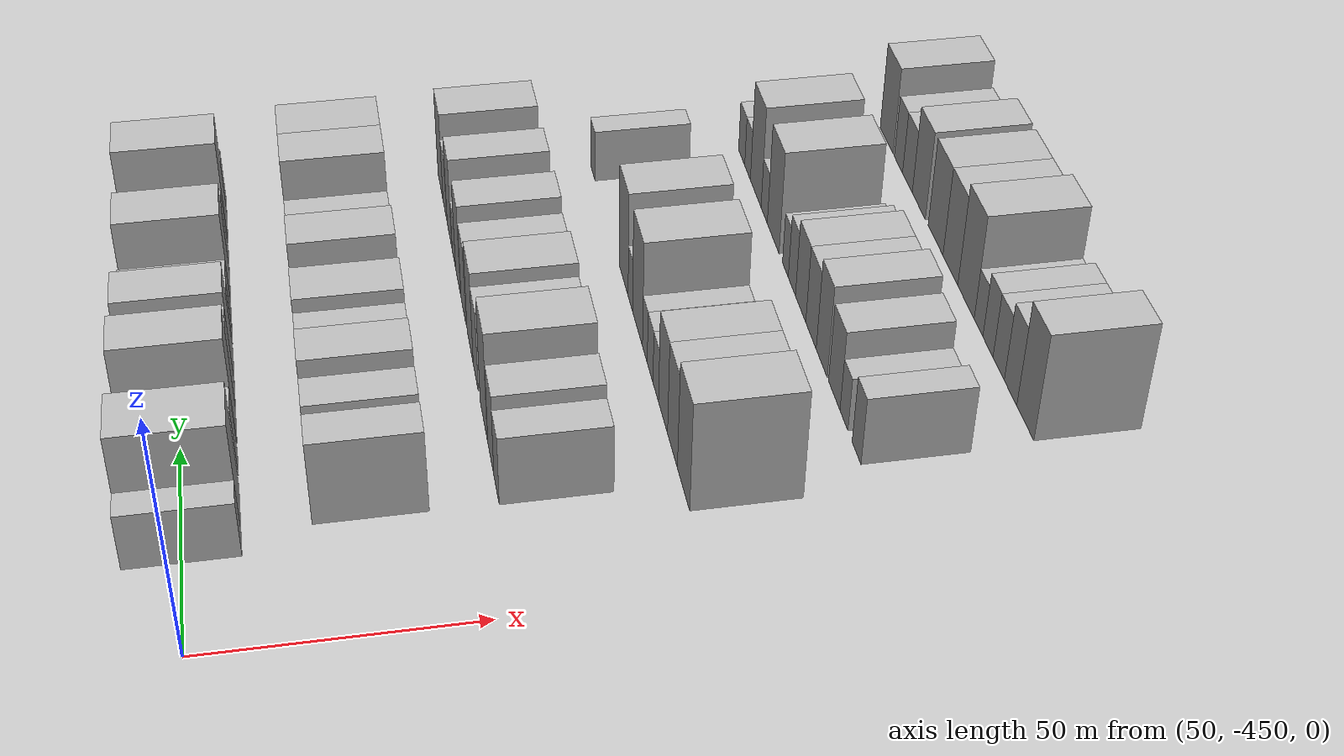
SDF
<sdf version="1.6">
 <world name="default">
  <model name="building_10">
   <static>1</static>
   <pose>50.0000 -425.8191 0 0.000000 0.000000 0.000000</pose>
   <link name="link">
    <pose>0 0 6.00 0 0 0</pose>
    <collision name="collision"><geometry><box><size>20.0000 5.7678 12.0000</size></box></geometry></collision>
    <visual name="visual">
     <cast_shadows>0</cast_shadows>
     <geometry><box><size>20.0000 5.7678 12.0000</size></box></geometry>
     <material>
      <script>
       <uri>model://HANNAS_wall/materials/scripts</uri>
       <uri>model://HANNAS_wall/materials/textures</uri>
       <name>vrc/HANNAS_wall</name>
      </script>
     </material>
    </visual>
   </link>
  </model>
  <model name="building_11">
   <static>1</static>
   <pose>50.0000 -417.2933 0 0.000000 0.000000 0.000000</pose>
   <link name="link">
    <pose>0 0 12.00 0 0 0</pose>
    <collision name="collision"><geometry><box><size>20.0000 11.2836 24.0000</size></box></geometry></collision>
    <visual name="visual">
     <cast_shadows>0</cast_shadows>
     <geometry><box><size>20.0000 11.2836 24.0000</size></box></geometry>
     <material>
      <script>
       <uri>model://HANNAS_wall/materials/scripts</uri>
       <uri>model://HANNAS_wall/materials/textures</uri>
       <name>vrc/HANNAS_wall</name>
      </script>
     </material>
    </visual>
   </link>
  </model>
  <model name="building_12">
   <static>1</static>
   <pose>50.0000 -405.4217 0 0.000000 0.000000 0.000000</pose>
   <link name="link">
    <pose>0 0 7.50 0 0 0</pose>
    <collision name="collision"><geometry><box><size>20.0000 6.4597 15.0000</size></box></geometry></collision>
    <visual name="visual">
     <cast_shadows>0</cast_shadows>
     <geometry><box><size>20.0000 6.4597 15.0000</size></box></geometry>
     <material>
      <script>
       <uri>model://HANNAS_wall/materials/scripts</uri>
       <uri>model://HANNAS_wall/materials/textures</uri>
       <name>vrc/HANNAS_wall</name>
      </script>
     </material>
    </visual>
   </link>
  </model>
  <model name="building_13">
   <static>1</static>
   <pose>50.0000 -395.3495 0 0.000000 0.000000 0.000000</pose>
   <link name="link">
    <pose>0 0 12.00 0 0 0</pose>
    <collision name="collision"><geometry><box><size>20.0000 9.6846 24.0000</size></box></geometry></collision>
    <visual name="visual">
     <cast_shadows>0</cast_shadows>
     <geometry><box><size>20.0000 9.6846 24.0000</size></box></geometry>
     <material>
      <script>
       <uri>model://HANNAS_wall/materials/scripts</uri>
       <uri>model://HANNAS_wall/materials/textures</uri>
       <name>vrc/HANNAS_wall</name>
      </script>
     </material>
    </visual>
   </link>
  </model>
  <model name="building_14">
   <static>1</static>
   <pose>50.0000 -386.7762 0 0.000000 0.000000 0.000000</pose>
   <link name="link">
    <pose>0 0 9.00 0 0 0</pose>
    <collision name="collision"><geometry><box><size>20.0000 7.4621 18.0000</size></box></geometry></collision>
    <visual name="visual">
     <cast_shadows>0</cast_shadows>
     <geometry><box><size>20.0000 7.4621 18.0000</size></box></geometry>
     <material>
      <script>
       <uri>model://HANNAS_wall/materials/scripts</uri>
       <uri>model://HANNAS_wall/materials/textures</uri>
       <name>vrc/HANNAS_wall</name>
      </script>
     </material>
    </visual>
   </link>
  </model>
  <model name="building_15">
   <static>1</static>
   <pose>50.0000 -378.3751 0 0.000000 0.000000 0.000000</pose>
   <link name="link">
    <pose>0 0 10.50 0 0 0</pose>
    <collision name="collision"><geometry><box><size>20.0000 9.3400 21.0000</size></box></geometry></collision>
    <visual name="visual">
     <cast_shadows>0</cast_shadows>
     <geometry><box><size>20.0000 9.3400 21.0000</size></box></geometry>
     <material>
      <script>
       <uri>model://HANNAS_wall/materials/scripts</uri>
       <uri>model://HANNAS_wall/materials/textures</uri>
       <name>vrc/HANNAS_wall</name>
      </script>
     </material>
    </visual>
   </link>
  </model>
  <model name="building_16">
   <static>1</static>
   <pose>50.0000 -369.2400 0 0.000000 0.000000 0.000000</pose>
   <link name="link">
    <pose>0 0 6.00 0 0 0</pose>
    <collision name="collision"><geometry><box><size>20.0000 4.9302 12.0000</size></box></geometry></collision>
    <visual name="visual">
     <cast_shadows>0</cast_shadows>
     <geometry><box><size>20.0000 4.9302 12.0000</size></box></geometry>
     <material>
      <script>
       <uri>model://HANNAS_wall/materials/scripts</uri>
       <uri>model://HANNAS_wall/materials/textures</uri>
       <name>vrc/HANNAS_wall</name>
      </script>
     </material>
    </visual>
   </link>
  </model>
  <model name="building_17">
   <static>1</static>
   <pose>50.0000 -363.8167 0 0.000000 0.000000 0.000000</pose>
   <link name="link">
    <pose>0 0 6.00 0 0 0</pose>
    <collision name="collision"><geometry><box><size>20.0000 5.9164 12.0000</size></box></geometry></collision>
    <visual name="visual">
     <cast_shadows>0</cast_shadows>
     <geometry><box><size>20.0000 5.9164 12.0000</size></box></geometry>
     <material>
      <script>
       <uri>model://HANNAS_wall/materials/scripts</uri>
       <uri>model://HANNAS_wall/materials/textures</uri>
       <name>vrc/HANNAS_wall</name>
      </script>
     </material>
    </visual>
   </link>
  </model>
  <model name="building_18">
   <static>1</static>
   <pose>50.0000 -353.6377 0 0.000000 0.000000 0.000000</pose>
   <link name="link">
    <pose>0 0 10.50 0 0 0</pose>
    <collision name="collision"><geometry><box><size>20.0000 10.4416 21.0000</size></box></geometry></collision>
    <visual name="visual">
     <cast_shadows>0</cast_shadows>
     <geometry><box><size>20.0000 10.4416 21.0000</size></box></geometry>
     <material>
      <script>
       <uri>model://HANNAS_wall/materials/scripts</uri>
       <uri>model://HANNAS_wall/materials/textures</uri>
       <name>vrc/HANNAS_wall</name>
      </script>
     </material>
    </visual>
   </link>
  </model>
  <model name="building_19">
   <static>1</static>
   <pose>50.0000 -345.2681 0 0.000000 0.000000 0.000000</pose>
   <link name="link">
    <pose>0 0 7.50 0 0 0</pose>
    <collision name="collision"><geometry><box><size>20.0000 6.2976 15.0000</size></box></geometry></collision>
    <visual name="visual">
     <cast_shadows>0</cast_shadows>
     <geometry><box><size>20.0000 6.2976 15.0000</size></box></geometry>
     <material>
      <script>
       <uri>model://HANNAS_wall/materials/scripts</uri>
       <uri>model://HANNAS_wall/materials/textures</uri>
       <name>vrc/HANNAS_wall</name>
      </script>
     </material>
    </visual>
   </link>
  </model>
  <model name="building_20">
   <static>1</static>
   <pose>50.0000 -333.7515 0 0.000000 0.000000 0.000000</pose>
   <link name="link">
    <pose>0 0 12.00 0 0 0</pose>
    <collision name="collision"><geometry><box><size>20.0000 10.7356 24.0000</size></box></geometry></collision>
    <visual name="visual">
     <cast_shadows>0</cast_shadows>
     <geometry><box><size>20.0000 10.7356 24.0000</size></box></geometry>
     <material>
      <script>
       <uri>model://HANNAS_wall/materials/scripts</uri>
       <uri>model://HANNAS_wall/materials/textures</uri>
       <name>vrc/HANNAS_wall</name>
      </script>
     </material>
    </visual>
   </link>
  </model>
  <model name="building_21">
   <static>1</static>
   <pose>50.0000 -325.8226 0 0.000000 0.000000 0.000000</pose>
   <link name="link">
    <pose>0 0 6.00 0 0 0</pose>
    <collision name="collision"><geometry><box><size>20.0000 5.1222 12.0000</size></box></geometry></collision>
    <visual name="visual">
     <cast_shadows>0</cast_shadows>
     <geometry><box><size>20.0000 5.1222 12.0000</size></box></geometry>
     <material>
      <script>
       <uri>model://HANNAS_wall/materials/scripts</uri>
       <uri>model://HANNAS_wall/materials/textures</uri>
       <name>vrc/HANNAS_wall</name>
      </script>
     </material>
    </visual>
   </link>
  </model>
  <model name="building_131">
   <static>1</static>
   <pose>82.0000 -419.0518 0 0.000000 0.000000 0.000000</pose>
   <link name="link">
    <pose>0 0 9.00 0 0 0</pose>
    <collision name="collision"><geometry><box><size>20.0000 7.8377 18.0000</size></box></geometry></collision>
    <visual name="visual">
     <cast_shadows>0</cast_shadows>
     <geometry><box><size>20.0000 7.8377 18.0000</size></box></geometry>
     <material>
      <script>
       <uri>model://HANNAS_wall/materials/scripts</uri>
       <uri>model://HANNAS_wall/materials/textures</uri>
       <name>vrc/HANNAS_wall</name>
      </script>
     </material>
    </visual>
   </link>
  </model>
  <model name="building_132">
   <static>1</static>
   <pose>82.0000 -409.3513 0 0.000000 0.000000 0.000000</pose>
   <link name="link">
    <pose>0 0 9.00 0 0 0</pose>
    <collision name="collision"><geometry><box><size>20.0000 7.5633 18.0000</size></box></geometry></collision>
    <visual name="visual">
     <cast_shadows>0</cast_shadows>
     <geometry><box><size>20.0000 7.5633 18.0000</size></box></geometry>
     <material>
      <script>
       <uri>model://HANNAS_wall/materials/scripts</uri>
       <uri>model://HANNAS_wall/materials/textures</uri>
       <name>vrc/HANNAS_wall</name>
      </script>
     </material>
    </visual>
   </link>
  </model>
  <model name="building_133">
   <static>1</static>
   <pose>82.0000 -400.1286 0 0.000000 0.000000 0.000000</pose>
   <link name="link">
    <pose>0 0 10.50 0 0 0</pose>
    <collision name="collision"><geometry><box><size>20.0000 8.8820 21.0000</size></box></geometry></collision>
    <visual name="visual">
     <cast_shadows>0</cast_shadows>
     <geometry><box><size>20.0000 8.8820 21.0000</size></box></geometry>
     <material>
      <script>
       <uri>model://HANNAS_wall/materials/scripts</uri>
       <uri>model://HANNAS_wall/materials/textures</uri>
       <name>vrc/HANNAS_wall</name>
      </script>
     </material>
    </visual>
   </link>
  </model>
  <model name="building_134">
   <static>1</static>
   <pose>82.0000 -391.4802 0 0.000000 0.000000 0.000000</pose>
   <link name="link">
    <pose>0 0 9.00 0 0 0</pose>
    <collision name="collision"><geometry><box><size>20.0000 8.4148 18.0000</size></box></geometry></collision>
    <visual name="visual">
     <cast_shadows>0</cast_shadows>
     <geometry><box><size>20.0000 8.4148 18.0000</size></box></geometry>
     <material>
      <script>
       <uri>model://HANNAS_wall/materials/scripts</uri>
       <uri>model://HANNAS_wall/materials/textures</uri>
       <name>vrc/HANNAS_wall</name>
      </script>
     </material>
    </visual>
   </link>
  </model>
  <model name="building_135">
   <static>1</static>
   <pose>82.0000 -382.4809 0 0.000000 0.000000 0.000000</pose>
   <link name="link">
    <pose>0 0 10.50 0 0 0</pose>
    <collision name="collision"><geometry><box><size>20.0000 9.5838 21.0000</size></box></geometry></collision>
    <visual name="visual">
     <cast_shadows>0</cast_shadows>
     <geometry><box><size>20.0000 9.5838 21.0000</size></box></geometry>
     <material>
      <script>
       <uri>model://HANNAS_wall/materials/scripts</uri>
       <uri>model://HANNAS_wall/materials/textures</uri>
       <name>vrc/HANNAS_wall</name>
      </script>
     </material>
    </visual>
   </link>
  </model>
  <model name="building_136">
   <static>1</static>
   <pose>82.0000 -374.0502 0 0.000000 0.000000 0.000000</pose>
   <link name="link">
    <pose>0 0 7.50 0 0 0</pose>
    <collision name="collision"><geometry><box><size>20.0000 7.2776 15.0000</size></box></geometry></collision>
    <visual name="visual">
     <cast_shadows>0</cast_shadows>
     <geometry><box><size>20.0000 7.2776 15.0000</size></box></geometry>
     <material>
      <script>
       <uri>model://HANNAS_wall/materials/scripts</uri>
       <uri>model://HANNAS_wall/materials/textures</uri>
       <name>vrc/HANNAS_wall</name>
      </script>
     </material>
    </visual>
   </link>
  </model>
  <model name="building_137">
   <static>1</static>
   <pose>82.0000 -365.7392 0 0.000000 0.000000 0.000000</pose>
   <link name="link">
    <pose>0 0 10.50 0 0 0</pose>
    <collision name="collision"><geometry><box><size>20.0000 9.3444 21.0000</size></box></geometry></collision>
    <visual name="visual">
     <cast_shadows>0</cast_shadows>
     <geometry><box><size>20.0000 9.3444 21.0000</size></box></geometry>
     <material>
      <script>
       <uri>model://HANNAS_wall/materials/scripts</uri>
       <uri>model://HANNAS_wall/materials/textures</uri>
       <name>vrc/HANNAS_wall</name>
      </script>
     </material>
    </visual>
   </link>
  </model>
  <model name="building_138">
   <static>1</static>
   <pose>82.0000 -356.8551 0 0.000000 0.000000 0.000000</pose>
   <link name="link">
    <pose>0 0 7.50 0 0 0</pose>
    <collision name="collision"><geometry><box><size>20.0000 6.4238 15.0000</size></box></geometry></collision>
    <visual name="visual">
     <cast_shadows>0</cast_shadows>
     <geometry><box><size>20.0000 6.4238 15.0000</size></box></geometry>
     <material>
      <script>
       <uri>model://HANNAS_wall/materials/scripts</uri>
       <uri>model://HANNAS_wall/materials/textures</uri>
       <name>vrc/HANNAS_wall</name>
      </script>
     </material>
    </visual>
   </link>
  </model>
  <model name="building_139">
   <static>1</static>
   <pose>82.0000 -350.5887 0 0.000000 0.000000 0.000000</pose>
   <link name="link">
    <pose>0 0 7.50 0 0 0</pose>
    <collision name="collision"><geometry><box><size>20.0000 6.1089 15.0000</size></box></geometry></collision>
    <visual name="visual">
     <cast_shadows>0</cast_shadows>
     <geometry><box><size>20.0000 6.1089 15.0000</size></box></geometry>
     <material>
      <script>
       <uri>model://HANNAS_wall/materials/scripts</uri>
       <uri>model://HANNAS_wall/materials/textures</uri>
       <name>vrc/HANNAS_wall</name>
      </script>
     </material>
    </visual>
   </link>
  </model>
  <model name="building_140">
   <static>1</static>
   <pose>82.0000 -342.6382 0 0.000000 0.000000 0.000000</pose>
   <link name="link">
    <pose>0 0 12.00 0 0 0</pose>
    <collision name="collision"><geometry><box><size>20.0000 9.7922 24.0000</size></box></geometry></collision>
    <visual name="visual">
     <cast_shadows>0</cast_shadows>
     <geometry><box><size>20.0000 9.7922 24.0000</size></box></geometry>
     <material>
      <script>
       <uri>model://HANNAS_wall/materials/scripts</uri>
       <uri>model://HANNAS_wall/materials/textures</uri>
       <name>vrc/HANNAS_wall</name>
      </script>
     </material>
    </visual>
   </link>
  </model>
  <model name="building_141">
   <static>1</static>
   <pose>82.0000 -332.4891 0 0.000000 0.000000 0.000000</pose>
   <link name="link">
    <pose>0 0 12.00 0 0 0</pose>
    <collision name="collision"><geometry><box><size>20.0000 10.5059 24.0000</size></box></geometry></collision>
    <visual name="visual">
     <cast_shadows>0</cast_shadows>
     <geometry><box><size>20.0000 10.5059 24.0000</size></box></geometry>
     <material>
      <script>
       <uri>model://HANNAS_wall/materials/scripts</uri>
       <uri>model://HANNAS_wall/materials/textures</uri>
       <name>vrc/HANNAS_wall</name>
      </script>
     </material>
    </visual>
   </link>
  </model>
  <model name="building_248">
   <static>1</static>
   <pose>114.0000 -419.5696 0 0.000000 0.000000 0.000000</pose>
   <link name="link">
    <pose>0 0 7.50 0 0 0</pose>
    <collision name="collision"><geometry><box><size>20.0000 7.4821 15.0000</size></box></geometry></collision>
    <visual name="visual">
     <cast_shadows>0</cast_shadows>
     <geometry><box><size>20.0000 7.4821 15.0000</size></box></geometry>
     <material>
      <script>
       <uri>model://HANNAS_wall/materials/scripts</uri>
       <uri>model://HANNAS_wall/materials/textures</uri>
       <name>vrc/HANNAS_wall</name>
      </script>
     </material>
    </visual>
   </link>
  </model>
  <model name="building_249">
   <static>1</static>
   <pose>114.0000 -411.5378 0 0.000000 0.000000 0.000000</pose>
   <link name="link">
    <pose>0 0 9.00 0 0 0</pose>
    <collision name="collision"><geometry><box><size>20.0000 8.5815 18.0000</size></box></geometry></collision>
    <visual name="visual">
     <cast_shadows>0</cast_shadows>
     <geometry><box><size>20.0000 8.5815 18.0000</size></box></geometry>
     <material>
      <script>
       <uri>model://HANNAS_wall/materials/scripts</uri>
       <uri>model://HANNAS_wall/materials/textures</uri>
       <name>vrc/HANNAS_wall</name>
      </script>
     </material>
    </visual>
   </link>
  </model>
  <model name="building_250">
   <static>1</static>
   <pose>114.0000 -400.9803 0 0.000000 0.000000 0.000000</pose>
   <link name="link">
    <pose>0 0 12.00 0 0 0</pose>
    <collision name="collision"><geometry><box><size>20.0000 10.5334 24.0000</size></box></geometry></collision>
    <visual name="visual">
     <cast_shadows>0</cast_shadows>
     <geometry><box><size>20.0000 10.5334 24.0000</size></box></geometry>
     <material>
      <script>
       <uri>model://HANNAS_wall/materials/scripts</uri>
       <uri>model://HANNAS_wall/materials/textures</uri>
       <name>vrc/HANNAS_wall</name>
      </script>
     </material>
    </visual>
   </link>
  </model>
  <model name="building_251">
   <static>1</static>
   <pose>114.0000 -388.7476 0 0.000000 0.000000 0.000000</pose>
   <link name="link">
    <pose>0 0 9.00 0 0 0</pose>
    <collision name="collision"><geometry><box><size>20.0000 7.9319 18.0000</size></box></geometry></collision>
    <visual name="visual">
     <cast_shadows>0</cast_shadows>
     <geometry><box><size>20.0000 7.9319 18.0000</size></box></geometry>
     <material>
      <script>
       <uri>model://HANNAS_wall/materials/scripts</uri>
       <uri>model://HANNAS_wall/materials/textures</uri>
       <name>vrc/HANNAS_wall</name>
      </script>
     </material>
    </visual>
   </link>
  </model>
  <model name="building_252">
   <static>1</static>
   <pose>114.0000 -379.7760 0 0.000000 0.000000 0.000000</pose>
   <link name="link">
    <pose>0 0 10.50 0 0 0</pose>
    <collision name="collision"><geometry><box><size>20.0000 10.0113 21.0000</size></box></geometry></collision>
    <visual name="visual">
     <cast_shadows>0</cast_shadows>
     <geometry><box><size>20.0000 10.0113 21.0000</size></box></geometry>
     <material>
      <script>
       <uri>model://HANNAS_wall/materials/scripts</uri>
       <uri>model://HANNAS_wall/materials/textures</uri>
       <name>vrc/HANNAS_wall</name>
      </script>
     </material>
    </visual>
   </link>
  </model>
  <model name="building_253">
   <static>1</static>
   <pose>114.0000 -368.7015 0 0.000000 0.000000 0.000000</pose>
   <link name="link">
    <pose>0 0 9.00 0 0 0</pose>
    <collision name="collision"><geometry><box><size>20.0000 8.1379 18.0000</size></box></geometry></collision>
    <visual name="visual">
     <cast_shadows>0</cast_shadows>
     <geometry><box><size>20.0000 8.1379 18.0000</size></box></geometry>
     <material>
      <script>
       <uri>model://HANNAS_wall/materials/scripts</uri>
       <uri>model://HANNAS_wall/materials/textures</uri>
       <name>vrc/HANNAS_wall</name>
      </script>
     </material>
    </visual>
   </link>
  </model>
  <model name="building_254">
   <static>1</static>
   <pose>114.0000 -359.2315 0 0.000000 0.000000 0.000000</pose>
   <link name="link">
    <pose>0 0 10.50 0 0 0</pose>
    <collision name="collision"><geometry><box><size>20.0000 8.8020 21.0000</size></box></geometry></collision>
    <visual name="visual">
     <cast_shadows>0</cast_shadows>
     <geometry><box><size>20.0000 8.8020 21.0000</size></box></geometry>
     <material>
      <script>
       <uri>model://HANNAS_wall/materials/scripts</uri>
       <uri>model://HANNAS_wall/materials/textures</uri>
       <name>vrc/HANNAS_wall</name>
      </script>
     </material>
    </visual>
   </link>
  </model>
  <model name="building_255">
   <static>1</static>
   <pose>114.0000 -351.8576 0 0.000000 0.000000 0.000000</pose>
   <link name="link">
    <pose>0 0 6.00 0 0 0</pose>
    <collision name="collision"><geometry><box><size>20.0000 5.9457 12.0000</size></box></geometry></collision>
    <visual name="visual">
     <cast_shadows>0</cast_shadows>
     <geometry><box><size>20.0000 5.9457 12.0000</size></box></geometry>
     <material>
      <script>
       <uri>model://HANNAS_wall/materials/scripts</uri>
       <uri>model://HANNAS_wall/materials/textures</uri>
       <name>vrc/HANNAS_wall</name>
      </script>
     </material>
    </visual>
   </link>
  </model>
  <model name="building_256">
   <static>1</static>
   <pose>114.0000 -343.6477 0 0.000000 0.000000 0.000000</pose>
   <link name="link">
    <pose>0 0 10.50 0 0 0</pose>
    <collision name="collision"><geometry><box><size>20.0000 8.4742 21.0000</size></box></geometry></collision>
    <visual name="visual">
     <cast_shadows>0</cast_shadows>
     <geometry><box><size>20.0000 8.4742 21.0000</size></box></geometry>
     <material>
      <script>
       <uri>model://HANNAS_wall/materials/scripts</uri>
       <uri>model://HANNAS_wall/materials/textures</uri>
       <name>vrc/HANNAS_wall</name>
      </script>
     </material>
    </visual>
   </link>
  </model>
  <model name="building_257">
   <static>1</static>
   <pose>114.0000 -334.9145 0 0.000000 0.000000 0.000000</pose>
   <link name="link">
    <pose>0 0 7.50 0 0 0</pose>
    <collision name="collision"><geometry><box><size>20.0000 6.9921 15.0000</size></box></geometry></collision>
    <visual name="visual">
     <cast_shadows>0</cast_shadows>
     <geometry><box><size>20.0000 6.9921 15.0000</size></box></geometry>
     <material>
      <script>
       <uri>model://HANNAS_wall/materials/scripts</uri>
       <uri>model://HANNAS_wall/materials/textures</uri>
       <name>vrc/HANNAS_wall</name>
      </script>
     </material>
    </visual>
   </link>
  </model>
  <model name="building_258">
   <static>1</static>
   <pose>114.0000 -326.4656 0 0.000000 0.000000 0.000000</pose>
   <link name="link">
    <pose>0 0 10.50 0 0 0</pose>
    <collision name="collision"><geometry><box><size>20.0000 9.9057 21.0000</size></box></geometry></collision>
    <visual name="visual">
     <cast_shadows>0</cast_shadows>
     <geometry><box><size>20.0000 9.9057 21.0000</size></box></geometry>
     <material>
      <script>
       <uri>model://HANNAS_wall/materials/scripts</uri>
       <uri>model://HANNAS_wall/materials/textures</uri>
       <name>vrc/HANNAS_wall</name>
      </script>
     </material>
    </visual>
   </link>
  </model>
  <model name="building_366">
   <static>1</static>
   <pose>146.0000 -424.6190 0 0.000000 0.000000 0.000000</pose>
   <link name="link">
    <pose>0 0 12.00 0 0 0</pose>
    <collision name="collision"><geometry><box><size>20.0000 11.0587 24.0000</size></box></geometry></collision>
    <visual name="visual">
     <cast_shadows>0</cast_shadows>
     <geometry><box><size>20.0000 11.0587 24.0000</size></box></geometry>
     <material>
      <script>
       <uri>model://HANNAS_wall/materials/scripts</uri>
       <uri>model://HANNAS_wall/materials/textures</uri>
       <name>vrc/HANNAS_wall</name>
      </script>
     </material>
    </visual>
   </link>
  </model>
  <model name="building_367">
   <static>1</static>
   <pose>146.0000 -414.4801 0 0.000000 0.000000 0.000000</pose>
   <link name="link">
    <pose>0 0 10.50 0 0 0</pose>
    <collision name="collision"><geometry><box><size>20.0000 9.2193 21.0000</size></box></geometry></collision>
    <visual name="visual">
     <cast_shadows>0</cast_shadows>
     <geometry><box><size>20.0000 9.2193 21.0000</size></box></geometry>
     <material>
      <script>
       <uri>model://HANNAS_wall/materials/scripts</uri>
       <uri>model://HANNAS_wall/materials/textures</uri>
       <name>vrc/HANNAS_wall</name>
      </script>
     </material>
    </visual>
   </link>
  </model>
  <model name="building_368">
   <static>1</static>
   <pose>146.0000 -405.4758 0 0.000000 0.000000 0.000000</pose>
   <link name="link">
    <pose>0 0 10.50 0 0 0</pose>
    <collision name="collision"><geometry><box><size>20.0000 8.7893 21.0000</size></box></geometry></collision>
    <visual name="visual">
     <cast_shadows>0</cast_shadows>
     <geometry><box><size>20.0000 8.7893 21.0000</size></box></geometry>
     <material>
      <script>
       <uri>model://HANNAS_wall/materials/scripts</uri>
       <uri>model://HANNAS_wall/materials/textures</uri>
       <name>vrc/HANNAS_wall</name>
      </script>
     </material>
    </visual>
   </link>
  </model>
  <model name="building_369">
   <static>1</static>
   <pose>146.0000 -398.3038 0 0.000000 0.000000 0.000000</pose>
   <link name="link">
    <pose>0 0 6.00 0 0 0</pose>
    <collision name="collision"><geometry><box><size>20.0000 5.5546 12.0000</size></box></geometry></collision>
    <visual name="visual">
     <cast_shadows>0</cast_shadows>
     <geometry><box><size>20.0000 5.5546 12.0000</size></box></geometry>
     <material>
      <script>
       <uri>model://HANNAS_wall/materials/scripts</uri>
       <uri>model://HANNAS_wall/materials/textures</uri>
       <name>vrc/HANNAS_wall</name>
      </script>
     </material>
    </visual>
   </link>
  </model>
  <model name="building_370">
   <static>1</static>
   <pose>146.0000 -392.6201 0 0.000000 0.000000 0.000000</pose>
   <link name="link">
    <pose>0 0 6.00 0 0 0</pose>
    <collision name="collision"><geometry><box><size>20.0000 5.8129 12.0000</size></box></geometry></collision>
    <visual name="visual">
     <cast_shadows>0</cast_shadows>
     <geometry><box><size>20.0000 5.8129 12.0000</size></box></geometry>
     <material>
      <script>
       <uri>model://HANNAS_wall/materials/scripts</uri>
       <uri>model://HANNAS_wall/materials/textures</uri>
       <name>vrc/HANNAS_wall</name>
      </script>
     </material>
    </visual>
   </link>
  </model>
  <model name="building_371">
   <static>1</static>
   <pose>146.0000 -387.2226 0 0.000000 0.000000 0.000000</pose>
   <link name="link">
    <pose>0 0 6.00 0 0 0</pose>
    <collision name="collision"><geometry><box><size>20.0000 4.9822 12.0000</size></box></geometry></collision>
    <visual name="visual">
     <cast_shadows>0</cast_shadows>
     <geometry><box><size>20.0000 4.9822 12.0000</size></box></geometry>
     <material>
      <script>
       <uri>model://HANNAS_wall/materials/scripts</uri>
       <uri>model://HANNAS_wall/materials/textures</uri>
       <name>vrc/HANNAS_wall</name>
      </script>
     </material>
    </visual>
   </link>
  </model>
  <model name="building_372">
   <static>1</static>
   <pose>146.0000 -379.3462 0 0.000000 0.000000 0.000000</pose>
   <link name="link">
    <pose>0 0 12.00 0 0 0</pose>
    <collision name="collision"><geometry><box><size>20.0000 10.7706 24.0000</size></box></geometry></collision>
    <visual name="visual">
     <cast_shadows>0</cast_shadows>
     <geometry><box><size>20.0000 10.7706 24.0000</size></box></geometry>
     <material>
      <script>
       <uri>model://HANNAS_wall/materials/scripts</uri>
       <uri>model://HANNAS_wall/materials/textures</uri>
       <name>vrc/HANNAS_wall</name>
      </script>
     </material>
    </visual>
   </link>
  </model>
  <model name="building_373">
   <static>1</static>
   <pose>146.0000 -371.5034 0 0.000000 0.000000 0.000000</pose>
   <link name="link">
    <pose>0 0 6.00 0 0 0</pose>
    <collision name="collision"><geometry><box><size>20.0000 4.9151 12.0000</size></box></geometry></collision>
    <visual name="visual">
     <cast_shadows>0</cast_shadows>
     <geometry><box><size>20.0000 4.9151 12.0000</size></box></geometry>
     <material>
      <script>
       <uri>model://HANNAS_wall/materials/scripts</uri>
       <uri>model://HANNAS_wall/materials/textures</uri>
       <name>vrc/HANNAS_wall</name>
      </script>
     </material>
    </visual>
   </link>
  </model>
  <model name="building_374">
   <static>1</static>
   <pose>146.0000 -363.9908 0 0.000000 0.000000 0.000000</pose>
   <link name="link">
    <pose>0 0 12.00 0 0 0</pose>
    <collision name="collision"><geometry><box><size>20.0000 10.1101 24.0000</size></box></geometry></collision>
    <visual name="visual">
     <cast_shadows>0</cast_shadows>
     <geometry><box><size>20.0000 10.1101 24.0000</size></box></geometry>
     <material>
      <script>
       <uri>model://HANNAS_wall/materials/scripts</uri>
       <uri>model://HANNAS_wall/materials/textures</uri>
       <name>vrc/HANNAS_wall</name>
      </script>
     </material>
    </visual>
   </link>
  </model>
  <model name="building_375">
   <static>1</static>
   <pose>146.0000 -326.3778 0 0.000000 0.000000 0.000000</pose>
   <link name="link">
    <pose>0 0 6.00 0 0 0</pose>
    <collision name="collision"><geometry><box><size>20.0000 5.7053 12.0000</size></box></geometry></collision>
    <visual name="visual">
     <cast_shadows>0</cast_shadows>
     <geometry><box><size>20.0000 5.7053 12.0000</size></box></geometry>
     <material>
      <script>
       <uri>model://HANNAS_wall/materials/scripts</uri>
       <uri>model://HANNAS_wall/materials/textures</uri>
       <name>vrc/HANNAS_wall</name>
      </script>
     </material>
    </visual>
   </link>
  </model>
  <model name="building_476">
   <static>1</static>
   <pose>178.0000 -420.4299 0 0.000000 0.000000 0.000000</pose>
   <link name="link">
    <pose>0 0 7.50 0 0 0</pose>
    <collision name="collision"><geometry><box><size>20.0000 6.0752 15.0000</size></box></geometry></collision>
    <visual name="visual">
     <cast_shadows>0</cast_shadows>
     <geometry><box><size>20.0000 6.0752 15.0000</size></box></geometry>
     <material>
      <script>
       <uri>model://HANNAS_wall/materials/scripts</uri>
       <uri>model://HANNAS_wall/materials/textures</uri>
       <name>vrc/HANNAS_wall</name>
      </script>
     </material>
    </visual>
   </link>
  </model>
  <model name="building_477">
   <static>1</static>
   <pose>178.0000 -411.5671 0 0.000000 0.000000 0.000000</pose>
   <link name="link">
    <pose>0 0 6.00 0 0 0</pose>
    <collision name="collision"><geometry><box><size>20.0000 5.6503 12.0000</size></box></geometry></collision>
    <visual name="visual">
     <cast_shadows>0</cast_shadows>
     <geometry><box><size>20.0000 5.6503 12.0000</size></box></geometry>
     <material>
      <script>
       <uri>model://HANNAS_wall/materials/scripts</uri>
       <uri>model://HANNAS_wall/materials/textures</uri>
       <name>vrc/HANNAS_wall</name>
      </script>
     </material>
    </visual>
   </link>
  </model>
  <model name="building_478">
   <static>1</static>
   <pose>178.0000 -404.5381 0 0.000000 0.000000 0.000000</pose>
   <link name="link">
    <pose>0 0 9.00 0 0 0</pose>
    <collision name="collision"><geometry><box><size>20.0000 8.4079 18.0000</size></box></geometry></collision>
    <visual name="visual">
     <cast_shadows>0</cast_shadows>
     <geometry><box><size>20.0000 8.4079 18.0000</size></box></geometry>
     <material>
      <script>
       <uri>model://HANNAS_wall/materials/scripts</uri>
       <uri>model://HANNAS_wall/materials/textures</uri>
       <name>vrc/HANNAS_wall</name>
      </script>
     </material>
    </visual>
   </link>
  </model>
  <model name="building_479">
   <static>1</static>
   <pose>178.0000 -395.1265 0 0.000000 0.000000 0.000000</pose>
   <link name="link">
    <pose>0 0 10.50 0 0 0</pose>
    <collision name="collision"><geometry><box><size>20.0000 8.4152 21.0000</size></box></geometry></collision>
    <visual name="visual">
     <cast_shadows>0</cast_shadows>
     <geometry><box><size>20.0000 8.4152 21.0000</size></box></geometry>
     <material>
      <script>
       <uri>model://HANNAS_wall/materials/scripts</uri>
       <uri>model://HANNAS_wall/materials/textures</uri>
       <name>vrc/HANNAS_wall</name>
      </script>
     </material>
    </visual>
   </link>
  </model>
  <model name="building_480">
   <static>1</static>
   <pose>178.0000 -386.8092 0 0.000000 0.000000 0.000000</pose>
   <link name="link">
    <pose>0 0 9.00 0 0 0</pose>
    <collision name="collision"><geometry><box><size>20.0000 8.2194 18.0000</size></box></geometry></collision>
    <visual name="visual">
     <cast_shadows>0</cast_shadows>
     <geometry><box><size>20.0000 8.2194 18.0000</size></box></geometry>
     <material>
      <script>
       <uri>model://HANNAS_wall/materials/scripts</uri>
       <uri>model://HANNAS_wall/materials/textures</uri>
       <name>vrc/HANNAS_wall</name>
      </script>
     </material>
    </visual>
   </link>
  </model>
  <model name="building_481">
   <static>1</static>
   <pose>178.0000 -378.5019 0 0.000000 0.000000 0.000000</pose>
   <link name="link">
    <pose>0 0 9.00 0 0 0</pose>
    <collision name="collision"><geometry><box><size>20.0000 8.3952 18.0000</size></box></geometry></collision>
    <visual name="visual">
     <cast_shadows>0</cast_shadows>
     <geometry><box><size>20.0000 8.3952 18.0000</size></box></geometry>
     <material>
      <script>
       <uri>model://HANNAS_wall/materials/scripts</uri>
       <uri>model://HANNAS_wall/materials/textures</uri>
       <name>vrc/HANNAS_wall</name>
      </script>
     </material>
    </visual>
   </link>
  </model>
  <model name="building_482">
   <static>1</static>
   <pose>178.0000 -371.2986 0 0.000000 0.000000 0.000000</pose>
   <link name="link">
    <pose>0 0 7.50 0 0 0</pose>
    <collision name="collision"><geometry><box><size>20.0000 6.0114 15.0000</size></box></geometry></collision>
    <visual name="visual">
     <cast_shadows>0</cast_shadows>
     <geometry><box><size>20.0000 6.0114 15.0000</size></box></geometry>
     <material>
      <script>
       <uri>model://HANNAS_wall/materials/scripts</uri>
       <uri>model://HANNAS_wall/materials/textures</uri>
       <name>vrc/HANNAS_wall</name>
      </script>
     </material>
    </visual>
   </link>
  </model>
  <model name="building_483">
   <static>1</static>
   <pose>178.0000 -365.8392 0 0.000000 0.000000 0.000000</pose>
   <link name="link">
    <pose>0 0 6.00 0 0 0</pose>
    <collision name="collision"><geometry><box><size>20.0000 4.9074 12.0000</size></box></geometry></collision>
    <visual name="visual">
     <cast_shadows>0</cast_shadows>
     <geometry><box><size>20.0000 4.9074 12.0000</size></box></geometry>
     <material>
      <script>
       <uri>model://HANNAS_wall/materials/scripts</uri>
       <uri>model://HANNAS_wall/materials/textures</uri>
       <name>vrc/HANNAS_wall</name>
      </script>
     </material>
    </visual>
   </link>
  </model>
  <model name="building_484">
   <static>1</static>
   <pose>178.0000 -355.1684 0 0.000000 0.000000 0.000000</pose>
   <link name="link">
    <pose>0 0 12.00 0 0 0</pose>
    <collision name="collision"><geometry><box><size>20.0000 10.4342 24.0000</size></box></geometry></collision>
    <visual name="visual">
     <cast_shadows>0</cast_shadows>
     <geometry><box><size>20.0000 10.4342 24.0000</size></box></geometry>
     <material>
      <script>
       <uri>model://HANNAS_wall/materials/scripts</uri>
       <uri>model://HANNAS_wall/materials/textures</uri>
       <name>vrc/HANNAS_wall</name>
      </script>
     </material>
    </visual>
   </link>
  </model>
  <model name="building_485">
   <static>1</static>
   <pose>178.0000 -347.0982 0 0.000000 0.000000 0.000000</pose>
   <link name="link">
    <pose>0 0 6.00 0 0 0</pose>
    <collision name="collision"><geometry><box><size>20.0000 5.7061 12.0000</size></box></geometry></collision>
    <visual name="visual">
     <cast_shadows>0</cast_shadows>
     <geometry><box><size>20.0000 5.7061 12.0000</size></box></geometry>
     <material>
      <script>
       <uri>model://HANNAS_wall/materials/scripts</uri>
       <uri>model://HANNAS_wall/materials/textures</uri>
       <name>vrc/HANNAS_wall</name>
      </script>
     </material>
    </visual>
   </link>
  </model>
  <model name="building_486">
   <static>1</static>
   <pose>178.0000 -339.2361 0 0.000000 0.000000 0.000000</pose>
   <link name="link">
    <pose>0 0 12.00 0 0 0</pose>
    <collision name="collision"><geometry><box><size>20.0000 10.0182 24.0000</size></box></geometry></collision>
    <visual name="visual">
     <cast_shadows>0</cast_shadows>
     <geometry><box><size>20.0000 10.0182 24.0000</size></box></geometry>
     <material>
      <script>
       <uri>model://HANNAS_wall/materials/scripts</uri>
       <uri>model://HANNAS_wall/materials/textures</uri>
       <name>vrc/HANNAS_wall</name>
      </script>
     </material>
    </visual>
   </link>
  </model>
  <model name="building_487">
   <static>1</static>
   <pose>178.0000 -331.4713 0 0.000000 0.000000 0.000000</pose>
   <link name="link">
    <pose>0 0 6.00 0 0 0</pose>
    <collision name="collision"><geometry><box><size>20.0000 5.5114 12.0000</size></box></geometry></collision>
    <visual name="visual">
     <cast_shadows>0</cast_shadows>
     <geometry><box><size>20.0000 5.5114 12.0000</size></box></geometry>
     <material>
      <script>
       <uri>model://HANNAS_wall/materials/scripts</uri>
       <uri>model://HANNAS_wall/materials/textures</uri>
       <name>vrc/HANNAS_wall</name>
      </script>
     </material>
    </visual>
   </link>
  </model>
  <model name="building_488">
   <static>1</static>
   <pose>178.0000 -325.7368 0 0.000000 0.000000 0.000000</pose>
   <link name="link">
    <pose>0 0 6.00 0 0 0</pose>
    <collision name="collision"><geometry><box><size>20.0000 5.9576 12.0000</size></box></geometry></collision>
    <visual name="visual">
     <cast_shadows>0</cast_shadows>
     <geometry><box><size>20.0000 5.9576 12.0000</size></box></geometry>
     <material>
      <script>
       <uri>model://HANNAS_wall/materials/scripts</uri>
       <uri>model://HANNAS_wall/materials/textures</uri>
       <name>vrc/HANNAS_wall</name>
      </script>
     </material>
    </visual>
   </link>
  </model>
  <model name="building_602">
   <static>1</static>
   <pose>210.0000 -417.5299 0 0.000000 0.000000 0.000000</pose>
   <link name="link">
    <pose>0 0 12.00 0 0 0</pose>
    <collision name="collision"><geometry><box><size>20.0000 9.6451 24.0000</size></box></geometry></collision>
    <visual name="visual">
     <cast_shadows>0</cast_shadows>
     <geometry><box><size>20.0000 9.6451 24.0000</size></box></geometry>
     <material>
      <script>
       <uri>model://HANNAS_wall/materials/scripts</uri>
       <uri>model://HANNAS_wall/materials/textures</uri>
       <name>vrc/HANNAS_wall</name>
      </script>
     </material>
    </visual>
   </link>
  </model>
  <model name="building_603">
   <static>1</static>
   <pose>210.0000 -409.0647 0 0.000000 0.000000 0.000000</pose>
   <link name="link">
    <pose>0 0 9.00 0 0 0</pose>
    <collision name="collision"><geometry><box><size>20.0000 7.2853 18.0000</size></box></geometry></collision>
    <visual name="visual">
     <cast_shadows>0</cast_shadows>
     <geometry><box><size>20.0000 7.2853 18.0000</size></box></geometry>
     <material>
      <script>
       <uri>model://HANNAS_wall/materials/scripts</uri>
       <uri>model://HANNAS_wall/materials/textures</uri>
       <name>vrc/HANNAS_wall</name>
      </script>
     </material>
    </visual>
   </link>
  </model>
  <model name="building_604">
   <static>1</static>
   <pose>210.0000 -402.0368 0 0.000000 0.000000 0.000000</pose>
   <link name="link">
    <pose>0 0 7.50 0 0 0</pose>
    <collision name="collision"><geometry><box><size>20.0000 6.7704 15.0000</size></box></geometry></collision>
    <visual name="visual">
     <cast_shadows>0</cast_shadows>
     <geometry><box><size>20.0000 6.7704 15.0000</size></box></geometry>
     <material>
      <script>
       <uri>model://HANNAS_wall/materials/scripts</uri>
       <uri>model://HANNAS_wall/materials/textures</uri>
       <name>vrc/HANNAS_wall</name>
      </script>
     </material>
    </visual>
   </link>
  </model>
  <model name="building_605">
   <static>1</static>
   <pose>210.0000 -395.5333 0 0.000000 0.000000 0.000000</pose>
   <link name="link">
    <pose>0 0 7.50 0 0 0</pose>
    <collision name="collision"><geometry><box><size>20.0000 6.2366 15.0000</size></box></geometry></collision>
    <visual name="visual">
     <cast_shadows>0</cast_shadows>
     <geometry><box><size>20.0000 6.2366 15.0000</size></box></geometry>
     <material>
      <script>
       <uri>model://HANNAS_wall/materials/scripts</uri>
       <uri>model://HANNAS_wall/materials/textures</uri>
       <name>vrc/HANNAS_wall</name>
      </script>
     </material>
    </visual>
   </link>
  </model>
  <model name="building_606">
   <static>1</static>
   <pose>210.0000 -389.6685 0 0.000000 0.000000 0.000000</pose>
   <link name="link">
    <pose>0 0 6.00 0 0 0</pose>
    <collision name="collision"><geometry><box><size>20.0000 5.4930 12.0000</size></box></geometry></collision>
    <visual name="visual">
     <cast_shadows>0</cast_shadows>
     <geometry><box><size>20.0000 5.4930 12.0000</size></box></geometry>
     <material>
      <script>
       <uri>model://HANNAS_wall/materials/scripts</uri>
       <uri>model://HANNAS_wall/materials/textures</uri>
       <name>vrc/HANNAS_wall</name>
      </script>
     </material>
    </visual>
   </link>
  </model>
  <model name="building_607">
   <static>1</static>
   <pose>210.0000 -381.5822 0 0.000000 0.000000 0.000000</pose>
   <link name="link">
    <pose>0 0 12.00 0 0 0</pose>
    <collision name="collision"><geometry><box><size>20.0000 10.6796 24.0000</size></box></geometry></collision>
    <visual name="visual">
     <cast_shadows>0</cast_shadows>
     <geometry><box><size>20.0000 10.6796 24.0000</size></box></geometry>
     <material>
      <script>
       <uri>model://HANNAS_wall/materials/scripts</uri>
       <uri>model://HANNAS_wall/materials/textures</uri>
       <name>vrc/HANNAS_wall</name>
      </script>
     </material>
    </visual>
   </link>
  </model>
  <model name="building_608">
   <static>1</static>
   <pose>210.0000 -371.2456 0 0.000000 0.000000 0.000000</pose>
   <link name="link">
    <pose>0 0 10.50 0 0 0</pose>
    <collision name="collision"><geometry><box><size>20.0000 9.9935 21.0000</size></box></geometry></collision>
    <visual name="visual">
     <cast_shadows>0</cast_shadows>
     <geometry><box><size>20.0000 9.9935 21.0000</size></box></geometry>
     <material>
      <script>
       <uri>model://HANNAS_wall/materials/scripts</uri>
       <uri>model://HANNAS_wall/materials/textures</uri>
       <name>vrc/HANNAS_wall</name>
      </script>
     </material>
    </visual>
   </link>
  </model>
  <model name="building_609">
   <static>1</static>
   <pose>210.0000 -361.0409 0 0.000000 0.000000 0.000000</pose>
   <link name="link">
    <pose>0 0 10.50 0 0 0</pose>
    <collision name="collision"><geometry><box><size>20.0000 10.4160 21.0000</size></box></geometry></collision>
    <visual name="visual">
     <cast_shadows>0</cast_shadows>
     <geometry><box><size>20.0000 10.4160 21.0000</size></box></geometry>
     <material>
      <script>
       <uri>model://HANNAS_wall/materials/scripts</uri>
       <uri>model://HANNAS_wall/materials/textures</uri>
       <name>vrc/HANNAS_wall</name>
      </script>
     </material>
    </visual>
   </link>
  </model>
  <model name="building_610">
   <static>1</static>
   <pose>210.0000 -349.0290 0 0.000000 0.000000 0.000000</pose>
   <link name="link">
    <pose>0 0 10.50 0 0 0</pose>
    <collision name="collision"><geometry><box><size>20.0000 9.6077 21.0000</size></box></geometry></collision>
    <visual name="visual">
     <cast_shadows>0</cast_shadows>
     <geometry><box><size>20.0000 9.6077 21.0000</size></box></geometry>
     <material>
      <script>
       <uri>model://HANNAS_wall/materials/scripts</uri>
       <uri>model://HANNAS_wall/materials/textures</uri>
       <name>vrc/HANNAS_wall</name>
      </script>
     </material>
    </visual>
   </link>
  </model>
  <model name="building_611">
   <static>1</static>
   <pose>210.0000 -340.5601 0 0.000000 0.000000 0.000000</pose>
   <link name="link">
    <pose>0 0 7.50 0 0 0</pose>
    <collision name="collision"><geometry><box><size>20.0000 7.3301 15.0000</size></box></geometry></collision>
    <visual name="visual">
     <cast_shadows>0</cast_shadows>
     <geometry><box><size>20.0000 7.3301 15.0000</size></box></geometry>
     <material>
      <script>
       <uri>model://HANNAS_wall/materials/scripts</uri>
       <uri>model://HANNAS_wall/materials/textures</uri>
       <name>vrc/HANNAS_wall</name>
      </script>
     </material>
    </visual>
   </link>
  </model>
  <model name="building_612">
   <static>1</static>
   <pose>210.0000 -333.7445 0 0.000000 0.000000 0.000000</pose>
   <link name="link">
    <pose>0 0 7.50 0 0 0</pose>
    <collision name="collision"><geometry><box><size>20.0000 6.3011 15.0000</size></box></geometry></collision>
    <visual name="visual">
     <cast_shadows>0</cast_shadows>
     <geometry><box><size>20.0000 6.3011 15.0000</size></box></geometry>
     <material>
      <script>
       <uri>model://HANNAS_wall/materials/scripts</uri>
       <uri>model://HANNAS_wall/materials/textures</uri>
       <name>vrc/HANNAS_wall</name>
      </script>
     </material>
    </visual>
   </link>
  </model>
  <model name="building_613">
   <static>1</static>
   <pose>210.0000 -324.4539 0 0.000000 0.000000 0.000000</pose>
   <link name="link">
    <pose>0 0 10.50 0 0 0</pose>
    <collision name="collision"><geometry><box><size>20.0000 10.2800 21.0000</size></box></geometry></collision>
    <visual name="visual">
     <cast_shadows>0</cast_shadows>
     <geometry><box><size>20.0000 10.2800 21.0000</size></box></geometry>
     <material>
      <script>
       <uri>model://HANNAS_wall/materials/scripts</uri>
       <uri>model://HANNAS_wall/materials/textures</uri>
       <name>vrc/HANNAS_wall</name>
      </script>
     </material>
    </visual>
   </link>
  </model>
 </world>
</sdf>
